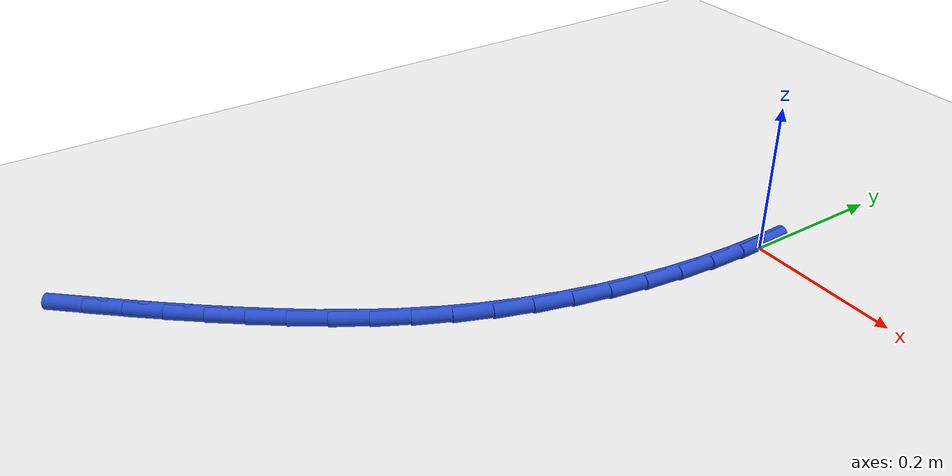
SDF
<sdf version="1.6">
 <world name="default">
  <model name="ground_plane">
   <static>1</static>
   <link name="link">
    <collision name="collision">
     <geometry><plane><normal>0 0 1</normal><size>100 100</size></plane></geometry>
     <surface><friction><ode><mu>100</mu><mu2>50</mu2></ode></friction></surface>
    </collision>
    <visual name="visual">
     <cast_shadows>0</cast_shadows>
     <geometry><plane><normal>0 0 1</normal><size>100 100</size></plane></geometry>
     <material>
      <script><uri>file://media/materials/scripts/gazebo.material</uri><name>Gazebo/WhiteGlow</name></script>
     </material>
    </visual>
   </link>
  </model>
  <model name="line">
   <link name="link_0">
    <pose>1.3877787807814457e-17 6.938893903907228e-17 0.01 0 1.57 -1.5482072051248363</pose>
    <collision name="collision">
     <geometry><cylinder><radius>0.01</radius><length>0.08</length></cylinder></geometry>
    </collision>
    <visual name="visual">
     <material>
      <script><name>Gazebo/Blue</name><uri>file://media/materials/scripts/gazebo.material</uri></script>
     </material>
     <geometry><cylinder><radius>0.01</radius><length>0.08</length></cylinder></geometry>
    </visual>
   </link>
   <link name="link_142">
    <pose>-0.3483184935801993 -0.7714095598631918 0.01 0 1.57 0.854373041311107</pose>
    <collision name="collision">
     <geometry><cylinder><radius>0.01</radius><length>0.08</length></cylinder></geometry>
    </collision>
    <visual name="visual">
     <material>
      <script><name>Gazebo/Blue</name><uri>file://media/materials/scripts/gazebo.material</uri></script>
     </material>
     <geometry><cylinder><radius>0.01</radius><length>0.08</length></cylinder></geometry>
    </visual>
   </link>
   <link name="link_143">
    <pose>-0.31561745229452365 -0.7338549437262448 0.01 0 1.57 0.8683810669232664</pose>
    <collision name="collision">
     <geometry><cylinder><radius>0.01</radius><length>0.08</length></cylinder></geometry>
    </collision>
    <visual name="visual">
     <material>
      <script><name>Gazebo/Blue</name><uri>file://media/materials/scripts/gazebo.material</uri></script>
     </material>
     <geometry><cylinder><radius>0.01</radius><length>0.08</length></cylinder></geometry>
    </visual>
   </link>
   <link name="link_144">
    <pose>-0.2836271746607277 -0.6960603888864823 0.01 0 1.57 0.8823767159037721</pose>
    <collision name="collision">
     <geometry><cylinder><radius>0.01</radius><length>0.08</length></cylinder></geometry>
    </collision>
    <visual name="visual">
     <material>
      <script><name>Gazebo/Blue</name><uri>file://media/materials/scripts/gazebo.material</uri></script>
     </material>
     <geometry><cylinder><radius>0.01</radius><length>0.08</length></cylinder></geometry>
    </visual>
   </link>
   <link name="link_145">
    <pose>-0.25241463304934525 -0.6581204350516894 0.01 0 1.57 0.9014832369440762</pose>
    <collision name="collision">
     <geometry><cylinder><radius>0.01</radius><length>0.08</length></cylinder></geometry>
    </collision>
    <visual name="visual">
     <material>
      <script><name>Gazebo/Blue</name><uri>file://media/materials/scripts/gazebo.material</uri></script>
     </material>
     <geometry><cylinder><radius>0.01</radius><length>0.08</length></cylinder></geometry>
    </visual>
   </link>
   <link name="link_146">
    <pose>-0.22218124934532615 -0.6199053163921674 0.01 0 1.57 0.9263416981585575</pose>
    <collision name="collision">
     <geometry><cylinder><radius>0.01</radius><length>0.08</length></cylinder></geometry>
    </collision>
    <visual name="visual">
     <material>
      <script><name>Gazebo/Blue</name><uri>file://media/materials/scripts/gazebo.material</uri></script>
     </material>
     <geometry><cylinder><radius>0.01</radius><length>0.08</length></cylinder></geometry>
    </visual>
   </link>
   <link name="link_147">
    <pose>-0.19314183952939265 -0.5812629213682784 0.01 0 1.57 0.9570757971700478</pose>
    <collision name="collision">
     <geometry><cylinder><radius>0.01</radius><length>0.08</length></cylinder></geometry>
    </collision>
    <visual name="visual">
     <material>
      <script><name>Gazebo/Blue</name><uri>file://media/materials/scripts/gazebo.material</uri></script>
     </material>
     <geometry><cylinder><radius>0.01</radius><length>0.08</length></cylinder></geometry>
    </visual>
   </link>
   <link name="link_148">
    <pose>-0.16551121958226545 -0.5420411384403827 0.01 0 1.57 0.9937636674107065</pose>
    <collision name="collision">
     <geometry><cylinder><radius>0.01</radius><length>0.08</length></cylinder></geometry>
    </collision>
    <visual name="visual">
     <material>
      <script><name>Gazebo/Blue</name><uri>file://media/materials/scripts/gazebo.material</uri></script>
     </material>
     <geometry><cylinder><radius>0.01</radius><length>0.08</length></cylinder></geometry>
    </visual>
   </link>
   <link name="link_149">
    <pose>-0.13950420548466572 -0.5020878560688405 0.01 0 1.57 1.036404138911217</pose>
    <collision name="collision">
     <geometry><cylinder><radius>0.01</radius><length>0.08</length></cylinder></geometry>
    </collision>
    <visual name="visual">
     <material>
      <script><name>Gazebo/Blue</name><uri>file://media/materials/scripts/gazebo.material</uri></script>
     </material>
     <geometry><cylinder><radius>0.01</radius><length>0.08</length></cylinder></geometry>
    </visual>
   </link>
   <link name="link_150">
    <pose>-0.11533561321731468 -0.4612509627140127 0.01 0 1.57 1.0848769430950316</pose>
    <collision name="collision">
     <geometry><cylinder><radius>0.01</radius><length>0.08</length></cylinder></geometry>
    </collision>
    <visual name="visual">
     <material>
      <script><name>Gazebo/Blue</name><uri>file://media/materials/scripts/gazebo.material</uri></script>
     </material>
     <geometry><cylinder><radius>0.01</radius><length>0.08</length></cylinder></geometry>
    </visual>
   </link>
   <link name="link_151">
    <pose>-0.09322025876093314 -0.41937834683625924 0.01 0 1.57 1.1388969505069158</pose>
    <collision name="collision">
     <geometry><cylinder><radius>0.01</radius><length>0.08</length></cylinder></geometry>
    </collision>
    <visual name="visual">
     <material>
      <script><name>Gazebo/Blue</name><uri>file://media/materials/scripts/gazebo.material</uri></script>
     </material>
     <geometry><cylinder><radius>0.01</radius><length>0.08</length></cylinder></geometry>
    </visual>
   </link>
   <link name="link_152">
    <pose>-0.07337283137545081 -0.3763180648091881 0.01 0 1.57 1.196180153115889</pose>
    <collision name="collision">
     <geometry><cylinder><radius>0.01</radius><length>0.08</length></cylinder></geometry>
    </collision>
    <visual name="visual">
     <material>
      <script><name>Gazebo/Blue</name><uri>file://media/materials/scripts/gazebo.material</uri></script>
     </material>
     <geometry><cylinder><radius>0.01</radius><length>0.08</length></cylinder></geometry>
    </visual>
   </link>
   <link name="link_153">
    <pose>-0.0559472133780305 -0.33199874613855246 0.01 0 1.57 1.2517947089000026</pose>
    <collision name="collision">
     <geometry><cylinder><radius>0.01</radius><length>0.08</length></cylinder></geometry>
    </collision>
    <visual name="visual">
     <material>
      <script><name>Gazebo/Blue</name><uri>file://media/materials/scripts/gazebo.material</uri></script>
     </material>
     <geometry><cylinder><radius>0.01</radius><length>0.08</length></cylinder></geometry>
    </visual>
   </link>
   <link name="link_154">
    <pose>-0.04093914999874588 -0.2865585621987795 0.01 0 1.57 1.3051758638931978</pose>
    <collision name="collision">
     <geometry><cylinder><radius>0.01</radius><length>0.08</length></cylinder></geometry>
    </collision>
    <visual name="visual">
     <material>
      <script><name>Gazebo/Blue</name><uri>file://media/materials/scripts/gazebo.material</uri></script>
     </material>
     <geometry><cylinder><radius>0.01</radius><length>0.08</length></cylinder></geometry>
    </visual>
   </link>
   <link name="link_155">
    <pose>-0.028319008796456074 -0.24016931142007877 0.01 0 1.57 1.3565684209493458</pose>
    <collision name="collision">
     <geometry><cylinder><radius>0.01</radius><length>0.08</length></cylinder></geometry>
    </collision>
    <visual name="visual">
     <material>
      <script><name>Gazebo/Blue</name><uri>file://media/materials/scripts/gazebo.material</uri></script>
     </material>
     <geometry><cylinder><radius>0.01</radius><length>0.08</length></cylinder></geometry>
    </visual>
   </link>
   <link name="link_156">
    <pose>-0.018057157330020106 -0.19300279223265934 0.01 0 1.57 1.406234358731269</pose>
    <collision name="collision">
     <geometry><cylinder><radius>0.01</radius><length>0.08</length></cylinder></geometry>
    </collision>
    <visual name="visual">
     <material>
      <script><name>Gazebo/Blue</name><uri>file://media/materials/scripts/gazebo.material</uri></script>
     </material>
     <geometry><cylinder><radius>0.01</radius><length>0.08</length></cylinder></geometry>
    </visual>
   </link>
   <link name="link_157">
    <pose>-0.010123963158297474 -0.14523080306673256 0.01 0 1.57 1.4544464529370753</pose>
    <collision name="collision">
     <geometry><cylinder><radius>0.01</radius><length>0.08</length></cylinder></geometry>
    </collision>
    <visual name="visual">
     <material>
      <script><name>Gazebo/Blue</name><uri>file://media/materials/scripts/gazebo.material</uri></script>
     </material>
     <geometry><cylinder><radius>0.01</radius><length>0.08</length></cylinder></geometry>
    </visual>
   </link>
   <link name="link_158">
    <pose>-0.004489793840147142 -0.09702514235250723 0.01 0 1.57 1.5014842204095382</pose>
    <collision name="collision">
     <geometry><cylinder><radius>0.01</radius><length>0.08</length></cylinder></geometry>
    </collision>
    <visual name="visual">
     <material>
      <script><name>Gazebo/Blue</name><uri>file://media/materials/scripts/gazebo.material</uri></script>
     </material>
     <geometry><cylinder><radius>0.01</radius><length>0.08</length></cylinder></geometry>
    </visual>
   </link>
   <link name="link_159">
    <pose>-0.0011250169344282652 -0.048557608520193134 0.01 0 1.57 1.5476317654698755</pose>
    <collision name="collision">
     <geometry><cylinder><radius>0.01</radius><length>0.08</length></cylinder></geometry>
    </collision>
    <visual name="visual">
     <material>
      <script><name>Gazebo/Blue</name><uri>file://media/materials/scripts/gazebo.material</uri></script>
     </material>
     <geometry><cylinder><radius>0.01</radius><length>0.08</length></cylinder></geometry>
    </visual>
   </link>
   <link name="link_160">
    <pose>1.734723475976807e-18 1.3877787807814457e-17 0.01 0 1.57 -1.5484155199842968</pose>
    <collision name="collision">
     <geometry><cylinder><radius>0.01</radius><length>0.08</length></cylinder></geometry>
    </collision>
    <visual name="visual">
     <material>
      <script><name>Gazebo/Blue</name><uri>file://media/materials/scripts/gazebo.material</uri></script>
     </material>
     <geometry><cylinder><radius>0.01</radius><length>0.08</length></cylinder></geometry>
    </visual>
   </link>
  </model>
 </world>
</sdf>
